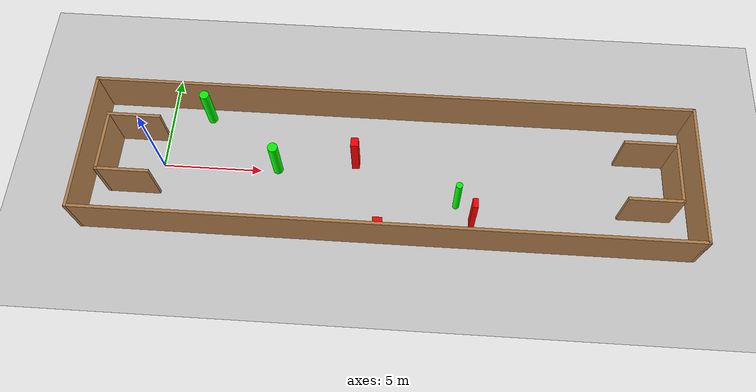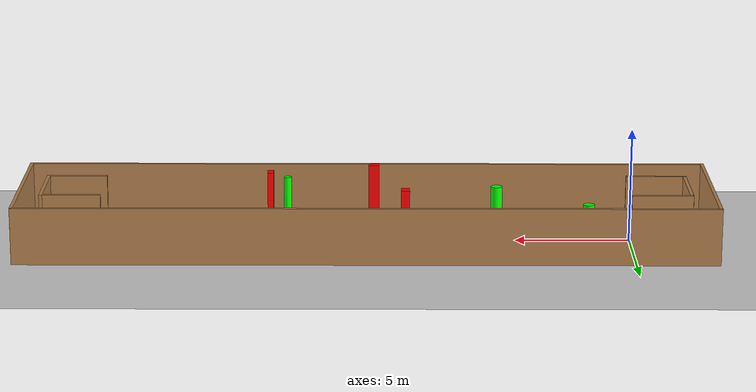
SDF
<sdf version="1.7">
 <world name="default">
  <light name="sun" type="directional">
   <pose>0 0 10 0 -0 0</pose>
   <diffuse>0.8 0.8 0.8 1</diffuse>
   <specular>0.2 0.2 0.2 1</specular>
   <attenuation>
    <range>1000</range>
    <constant>0.9</constant>
    <linear>0.01</linear>
    <quadratic>0.001</quadratic>
   </attenuation>
   <direction>-0.5 0.1 -0.9</direction>
   <spot><inner_angle>0</inner_angle><outer_angle>0</outer_angle><falloff>0</falloff></spot>
  </light>
  <model name="ground_plane">
   <static>1</static>
   <link name="link">
    <collision name="collision">
     <geometry><plane><normal>0 0 1</normal><size>100 100</size></plane></geometry>
     <surface>
      <contact><collide_bitmask>65535</collide_bitmask></contact>
      <friction><ode><mu>100</mu><mu2>50</mu2></ode></friction>
     </surface>
    </collision>
    <visual name="visual">
     <cast_shadows>0</cast_shadows>
     <geometry><plane><normal>0 0 1</normal><size>100 100</size></plane></geometry>
     <material>
      <script><uri>file://media/materials/scripts/gazebo.material</uri><name>Gazebo/Grey</name></script>
     </material>
    </visual>
   </link>
  </model>
  <gravity>0 0 -9.8</gravity>
  <magnetic_field>6e-06 2.3e-05 -4.2e-05</magnetic_field>
  <atmosphere type="adiabatic"/>
  <physics type="ode">
   <max_step_size>0.001</max_step_size>
   <real_time_factor>1</real_time_factor>
   <real_time_update_rate>1000</real_time_update_rate>
  </physics>
  <scene><ambient>0.4 0.4 0.4 1</ambient><background>0.7 0.7 0.7 1</background><shadows>1</shadows></scene>
  <spherical_coordinates>
   <surface_model>EARTH_WGS84</surface_model>
   <latitude_deg>0</latitude_deg>
   <longitude_deg>0</longitude_deg>
   <elevation>0</elevation>
   <heading_deg>0</heading_deg>
  </spherical_coordinates>
  <model name="my_base_walls">
   <link name="Wall_0">
    <collision name="Wall_0_Collision">
     <geometry><box><size>7.15 0.15 2.5</size></box></geometry>
     <pose>0 0 1.25 0 -0 0</pose>
    </collision>
    <visual name="Wall_0_Visual">
     <pose>0 0 1.25 0 -0 0</pose>
     <geometry><box><size>7.15 0.15 2.5</size></box></geometry>
     <material>
      <script><uri>file://media/materials/scripts/gazebo.material</uri><name>Gazebo/Wood</name></script>
      <ambient>1 1 1 1</ambient>
     </material>
     <meta><layer>0</layer></meta>
    </visual>
    <pose>-15 0 0 0 -0 1.5708</pose>
   </link>
   <link name="Wall_10">
    <collision name="Wall_10_Collision">
     <geometry><box><size>2.65 0.15 2.5</size></box></geometry>
     <pose>0 0 1.25 0 -0 0</pose>
    </collision>
    <visual name="Wall_10_Visual">
     <pose>0 0 1.25 0 -0 0</pose>
     <geometry><box><size>2.65 0.15 2.5</size></box></geometry>
     <material>
      <script><uri>file://media/materials/scripts/gazebo.material</uri><name>Gazebo/Wood</name></script>
      <ambient>1 1 1 1</ambient>
     </material>
     <meta><layer>0</layer></meta>
    </visual>
    <pose>-12.75 -1.5 0 0 -0 0</pose>
   </link>
   <link name="Wall_12">
    <collision name="Wall_12_Collision">
     <geometry><box><size>2.65 0.15 2.5</size></box></geometry>
     <pose>0 0 1.25 0 -0 0</pose>
    </collision>
    <visual name="Wall_12_Visual">
     <pose>0 0 1.25 0 -0 0</pose>
     <geometry><box><size>2.65 0.15 2.5</size></box></geometry>
     <material>
      <script><uri>file://media/materials/scripts/gazebo.material</uri><name>Gazebo/Wood</name></script>
      <ambient>1 1 1 1</ambient>
     </material>
     <meta><layer>0</layer></meta>
    </visual>
    <pose>-12.75 1.5 0 0 -0 0</pose>
   </link>
   <link name="Wall_14">
    <collision name="Wall_14_Collision">
     <geometry><box><size>3.15 0.15 2.5</size></box></geometry>
     <pose>0 0 1.25 0 -0 0</pose>
    </collision>
    <visual name="Wall_14_Visual">
     <pose>0 0 1.25 0 -0 0</pose>
     <geometry><box><size>3.15 0.15 2.5</size></box></geometry>
     <material>
      <script><uri>file://media/materials/scripts/gazebo.material</uri><name>Gazebo/Wood</name></script>
      <ambient>1 1 1 1</ambient>
     </material>
     <meta><layer>0</layer></meta>
    </visual>
    <pose>14 0 0 0 -0 -1.5708</pose>
   </link>
   <link name="Wall_15">
    <collision name="Wall_15_Collision">
     <geometry><box><size>2.65 0.15 2.5</size></box></geometry>
     <pose>0 0 1.25 0 -0 0</pose>
    </collision>
    <visual name="Wall_15_Visual">
     <pose>0 0 1.25 0 -0 0</pose>
     <geometry><box><size>2.65 0.15 2.5</size></box></geometry>
     <material>
      <script><uri>file://media/materials/scripts/gazebo.material</uri><name>Gazebo/Wood</name></script>
      <ambient>1 1 1 1</ambient>
     </material>
     <meta><layer>0</layer></meta>
    </visual>
    <pose>12.75 -1.5 0 0 -0 3.14159</pose>
   </link>
   <link name="Wall_17">
    <collision name="Wall_17_Collision">
     <geometry><box><size>2.65 0.15 2.5</size></box></geometry>
     <pose>0 0 1.25 0 -0 0</pose>
    </collision>
    <visual name="Wall_17_Visual">
     <pose>0 0 1.25 0 -0 0</pose>
     <geometry><box><size>2.65 0.15 2.5</size></box></geometry>
     <material>
      <script><uri>file://media/materials/scripts/gazebo.material</uri><name>Gazebo/Wood</name></script>
      <ambient>1 1 1 1</ambient>
     </material>
     <meta><layer>0</layer></meta>
    </visual>
    <pose>12.75 1.5 0 0 -0 3.14159</pose>
   </link>
   <link name="Wall_2">
    <collision name="Wall_2_Collision">
     <geometry><box><size>30.15 0.15 2.5</size></box></geometry>
     <pose>0 0 1.25 0 -0 0</pose>
    </collision>
    <visual name="Wall_2_Visual">
     <pose>0 0 1.25 0 -0 0</pose>
     <geometry><box><size>30.15 0.15 2.5</size></box></geometry>
     <material>
      <script><uri>file://media/materials/scripts/gazebo.material</uri><name>Gazebo/Wood</name></script>
      <ambient>1 1 1 1</ambient>
     </material>
     <meta><layer>0</layer></meta>
    </visual>
    <pose>-0 -3.5 0 0 -0 0</pose>
   </link>
   <link name="Wall_4">
    <collision name="Wall_4_Collision">
     <geometry><box><size>30.15 0.15 2.5</size></box></geometry>
     <pose>0 0 1.25 0 -0 0</pose>
    </collision>
    <visual name="Wall_4_Visual">
     <pose>0 0 1.25 0 -0 0</pose>
     <geometry><box><size>30.15 0.15 2.5</size></box></geometry>
     <material>
      <script><uri>file://media/materials/scripts/gazebo.material</uri><name>Gazebo/Wood</name></script>
      <ambient>1 1 1 1</ambient>
     </material>
     <meta><layer>0</layer></meta>
    </visual>
    <pose>-0 3.5 0 0 -0 0</pose>
   </link>
   <link name="Wall_6">
    <collision name="Wall_6_Collision">
     <geometry><box><size>7.15 0.15 2.5</size></box></geometry>
     <pose>0 0 1.25 0 -0 0</pose>
    </collision>
    <visual name="Wall_6_Visual">
     <pose>0 0 1.25 0 -0 0</pose>
     <geometry><box><size>7.15 0.15 2.5</size></box></geometry>
     <material>
      <script><uri>file://media/materials/scripts/gazebo.material</uri><name>Gazebo/Wood</name></script>
      <ambient>1 1 1 1</ambient>
     </material>
     <meta><layer>0</layer></meta>
    </visual>
    <pose>15 0 0 0 -0 -1.5708</pose>
   </link>
   <link name="Wall_9">
    <collision name="Wall_9_Collision">
     <geometry><box><size>3.15 0.15 2.5</size></box></geometry>
     <pose>0 0 1.25 0 -0 0</pose>
    </collision>
    <visual name="Wall_9_Visual">
     <pose>0 0 1.25 0 -0 0</pose>
     <geometry><box><size>3.15 0.15 2.5</size></box></geometry>
     <material>
      <script><uri>file://media/materials/scripts/gazebo.material</uri><name>Gazebo/Wood</name></script>
      <ambient>1 1 1 1</ambient>
     </material>
     <meta><layer>0</layer></meta>
    </visual>
    <pose>-14 0 0 0 -0 -1.5708</pose>
   </link>
   <static>1</static>
   <pose>11.5 0 0 0 -0 0</pose>
  </model>
  <model name="cylinder1">
   <static>1</static>
   <link name="link">
    <inertial>
     <mass>1</mass>
     <inertia><ixx>0.5</ixx><ixy>0</ixy><ixz>0</ixz><iyy>0.5</iyy><iyz>0</iyz><izz>1</izz></inertia>
    </inertial>
    <collision name="collision">
     <geometry><cylinder><radius>0.23792429725041098</radius><length>2.5</length></cylinder></geometry>
    </collision>
    <visual name="visual">
     <geometry><cylinder><radius>0.23792429725041098</radius><length>2.5</length></cylinder></geometry>
     <material>
      <ambient>0 1 0 1</ambient>
      <diffuse>0 1 0 1</diffuse>
      <specular>0.1 0.1 0.1 1</specular>
      <emissive>0 0 0 0</emissive>
     </material>
    </visual>
   </link>
   <pose>2.0370867715725733 2.8499781449048385 1.25 0 0 0</pose>
  </model>
  <model name="cylinder2">
   <static>1</static>
   <link name="link">
    <inertial>
     <mass>1</mass>
     <inertia><ixx>0.5</ixx><ixy>0</ixy><ixz>0</ixz><iyy>0.5</iyy><iyz>0</iyz><izz>1</izz></inertia>
    </inertial>
    <collision name="collision">
     <geometry><cylinder><radius>0.16305576801418856</radius><length>2.5</length></cylinder></geometry>
    </collision>
    <visual name="visual">
     <geometry><cylinder><radius>0.16305576801418856</radius><length>2.5</length></cylinder></geometry>
     <material>
      <ambient>0 1 0 1</ambient>
      <diffuse>0 1 0 1</diffuse>
      <specular>0.1 0.1 0.1 1</specular>
      <emissive>0 0 0 0</emissive>
     </material>
    </visual>
   </link>
   <pose>14.959313800417172 -1.3375140051118737 1.25 0 0 0</pose>
  </model>
  <model name="cylinder3">
   <static>1</static>
   <link name="link">
    <inertial>
     <mass>1</mass>
     <inertia><ixx>0.5</ixx><ixy>0</ixy><ixz>0</ixz><iyy>0.5</iyy><iyz>0</iyz><izz>1</izz></inertia>
    </inertial>
    <collision name="collision">
     <geometry><cylinder><radius>0.24893782997902095</radius><length>2.5</length></cylinder></geometry>
    </collision>
    <visual name="visual">
     <geometry><cylinder><radius>0.24893782997902095</radius><length>2.5</length></cylinder></geometry>
     <material>
      <ambient>0 1 0 1</ambient>
      <diffuse>0 1 0 1</diffuse>
      <specular>0.1 0.1 0.1 1</specular>
      <emissive>0 0 0 0</emissive>
     </material>
    </visual>
   </link>
   <pose>5.839039455030381 0.12296085978757088 1.25 0 0 0</pose>
  </model>
  <model name="box1">
   <static>1</static>
   <link name="link">
    <inertial>
     <mass>1</mass>
     <inertia><ixx>0.083</ixx><ixy>0</ixy><ixz>0</ixz><iyy>0.083</iyy><iyz>0</iyz><izz>0.083</izz></inertia>
    </inertial>
    <collision name="collision">
     <geometry><box><size>0.4625675794687592 0.34838614023923037 2.5</size></box></geometry>
    </collision>
    <visual name="visual">
     <geometry><box><size>0.4625675794687592 0.34838614023923037 2.5</size></box></geometry>
     <material>
      <ambient>1 0 0 1</ambient>
      <diffuse>1 0 0 1</diffuse>
      <specular>0.1 0.1 0.1 1</specular>
      <emissive>0 0 0 0</emissive>
     </material>
    </visual>
    <sensor name="my_contact" type="contact">
     <contact><collision>box_collision</collision><topic>__default_topic__</topic></contact>
    </sensor>
   </link>
   <pose>11.176326668192392 -3.36197283717193 1.25 0 0 0</pose>
  </model>
  <model name="box2">
   <static>1</static>
   <link name="link">
    <inertial>
     <mass>1</mass>
     <inertia><ixx>0.083</ixx><ixy>0</ixy><ixz>0</ixz><iyy>0.083</iyy><iyz>0</iyz><izz>0.083</izz></inertia>
    </inertial>
    <collision name="collision">
     <geometry><box><size>0.37391014784667415 0.468699544859573 2.5</size></box></geometry>
    </collision>
    <visual name="visual">
     <geometry><box><size>0.37391014784667415 0.468699544859573 2.5</size></box></geometry>
     <material>
      <ambient>1 0 0 1</ambient>
      <diffuse>1 0 0 1</diffuse>
      <specular>0.1 0.1 0.1 1</specular>
      <emissive>0 0 0 0</emissive>
     </material>
    </visual>
    <sensor name="my_contact" type="contact">
     <contact><collision>box_collision</collision><topic>__default_topic__</topic></contact>
    </sensor>
   </link>
   <pose>9.79841183188918 0.6607546852924928 1.25 0 0 0</pose>
  </model>
  <model name="box3">
   <static>1</static>
   <link name="link">
    <inertial>
     <mass>1</mass>
     <inertia><ixx>0.083</ixx><ixy>0</ixy><ixz>0</ixz><iyy>0.083</iyy><iyz>0</iyz><izz>0.083</izz></inertia>
    </inertial>
    <collision name="collision">
     <geometry><box><size>0.26467687936883605 0.4665798964645159 2.5</size></box></geometry>
    </collision>
    <visual name="visual">
     <geometry><box><size>0.26467687936883605 0.4665798964645159 2.5</size></box></geometry>
     <material>
      <ambient>1 0 0 1</ambient>
      <diffuse>1 0 0 1</diffuse>
      <specular>0.1 0.1 0.1 1</specular>
      <emissive>0 0 0 0</emissive>
     </material>
    </visual>
    <sensor name="my_contact" type="contact">
     <contact><collision>box_collision</collision><topic>__default_topic__</topic></contact>
    </sensor>
   </link>
   <pose>15.744769549949842 -2.192056156701345 1.25 0 0 0</pose>
  </model>
 </world>
</sdf>
